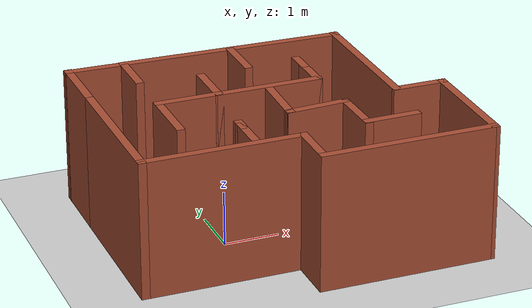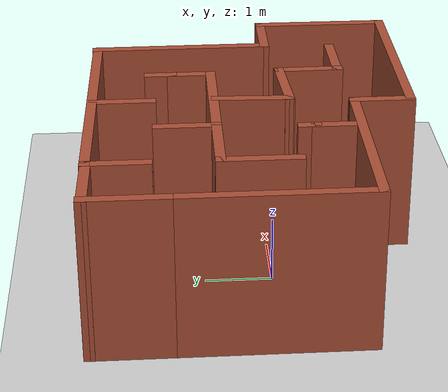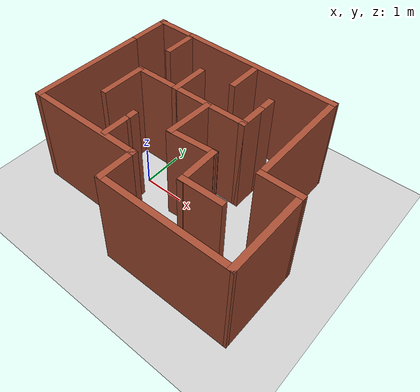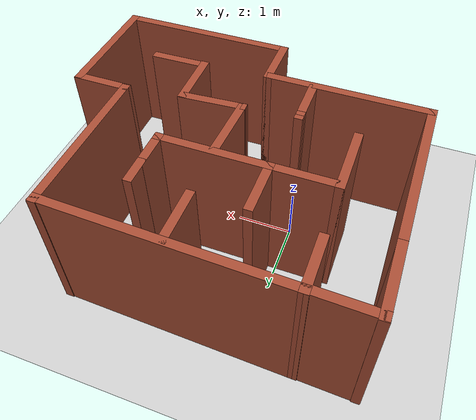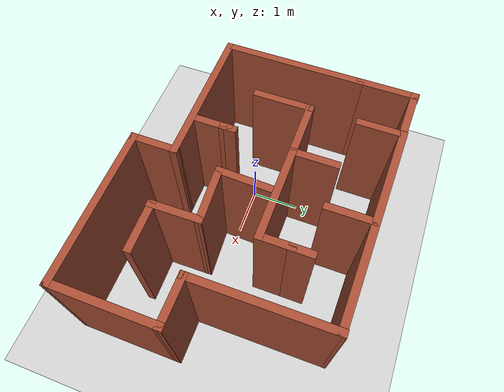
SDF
<?xml version='1.0'?>
<sdf version='1.6'>
  <world name="default">
    <include>
      <uri>model://ground_plane</uri>
    </include>

    <!-- Global light source -->
    <include>
      <uri>model://sun</uri>
    </include>

    <!-- Focus camera on tall pendulum -->
    <gui fullscreen='0'>
      <camera name='user_camera'>
        <pose>4.927360 -4.376610 3.740080 0.000000 0.275643 2.356190</pose>
        <view_controller>orbit</view_controller>
      </camera>
    </gui>

  <model name='brick_maze'>
    <pose frame=''>1.07072 0.276366 0 0 -0 0</pose>
    <link name='Wall_1'>
      <collision name='Wall_1_Collision'>
        <geometry>
          <box>
            <size>1.1587 0.15 2.5</size>
          </box>
        </geometry>
        <pose frame=''>0 0 1.25 0 -0 0</pose>
      </collision>
      <visual name='Wall_1_Visual'>
        <pose frame=''>0 0 1.25 0 -0 0</pose>
        <geometry>
          <box>
            <size>1.1587 0.15 2.5</size>
          </box>
        </geometry>
        <material>
          <script>
            <uri>file://media/materials/scripts/gazebo.material</uri>
            <name>Gazebo/Bricks</name>
          </script>
          <ambient>0.921569 0.807843 0.615686 1</ambient>
        </material>
      </visual>
      <pose frame=''>-2.47228 2.39231 0 0 0 -0.026216</pose>
    </link>
    <link name='Wall_10'>
      <collision name='Wall_10_Collision'>
        <geometry>
          <box>
            <size>3 0.15 2.5</size>
          </box>
        </geometry>
        <pose frame=''>0 0 1.25 0 -0 0</pose>
      </collision>
      <visual name='Wall_10_Visual'>
        <pose frame=''>0 0 1.25 0 -0 0</pose>
        <geometry>
          <box>
            <size>3 0.15 2.5</size>
          </box>
        </geometry>
        <material>
          <script>
            <uri>file://media/materials/scripts/gazebo.material</uri>
            <name>Gazebo/Bricks</name>
          </script>
          <ambient>1 1 1 1</ambient>
        </material>
      </visual>
      <pose frame=''>-1.55163 -1.56858 0 0 -0 0</pose>
    </link>
    <link name='Wall_12'>
      <collision name='Wall_12_Collision'>
        <geometry>
          <box>
            <size>0.75 0.15 2.5</size>
          </box>
        </geometry>
        <pose frame=''>0 0 1.25 0 -0 0</pose>
      </collision>
      <visual name='Wall_12_Visual'>
        <pose frame=''>0 0 1.25 0 -0 0</pose>
        <geometry>
          <box>
            <size>0.75 0.15 2.5</size>
          </box>
        </geometry>
        <material>
          <script>
            <uri>file://media/materials/scripts/gazebo.material</uri>
            <name>Gazebo/Bricks</name>
          </script>
          <ambient>1 1 1 1</ambient>
        </material>
      </visual>
      <pose frame=''>-0.953207 -1.20906 0 0 -0 1.5708</pose>
    </link>
    <link name='Wall_13'>
      <collision name='Wall_13_Collision'>
        <geometry>
          <box>
            <size>0.25 0.15 2.5</size>
          </box>
        </geometry>
        <pose frame=''>0 0 1.25 0 -0 0</pose>
      </collision>
      <visual name='Wall_13_Visual'>
        <pose frame=''>0 0 1.25 0 -0 0</pose>
        <geometry>
          <box>
            <size>0.25 0.15 2.5</size>
          </box>
        </geometry>
        <material>
          <script>
            <uri>file://media/materials/scripts/gazebo.material</uri>
            <name>Gazebo/Bricks</name>
          </script>
          <ambient>1 1 1 1</ambient>
        </material>
      </visual>
      <pose frame=''>-0.953207 -0.85906 0 0 -0 1.5708</pose>
    </link>
    <link name='Wall_14'>
      <collision name='Wall_14_Collision'>
        <geometry>
          <box>
            <size>0.25 0.15 2.5</size>
          </box>
        </geometry>
        <pose frame=''>0 0 1.25 0 -0 0</pose>
      </collision>
      <visual name='Wall_14_Visual'>
        <pose frame=''>0 0 1.25 0 -0 0</pose>
        <geometry>
          <box>
            <size>0.25 0.15 2.5</size>
          </box>
        </geometry>
        <material>
          <script>
            <uri>file://media/materials/scripts/gazebo.material</uri>
            <name>Gazebo/Bricks</name>
          </script>
          <ambient>1 1 1 1</ambient>
        </material>
      </visual>
      <pose frame=''>-0.953207 -0.75906 0 0 -0 1.5708</pose>
    </link>
    <link name='Wall_16'>
      <collision name='Wall_16_Collision'>
        <geometry>
          <box>
            <size>1.25 0.15 2.5</size>
          </box>
        </geometry>
        <pose frame=''>0 0 1.25 0 -0 0</pose>
      </collision>
      <visual name='Wall_16_Visual'>
        <pose frame=''>0 0 1.25 0 -0 0</pose>
        <geometry>
          <box>
            <size>1.25 0.15 2.5</size>
          </box>
        </geometry>
        <material>
          <script>
            <uri>file://media/materials/scripts/gazebo.material</uri>
            <name>Gazebo/Bricks</name>
          </script>
          <ambient>1 1 1 1</ambient>
        </material>
      </visual>
      <pose frame=''>-1.95831 -0.020085 0 0 -0 1.5708</pose>
    </link>
    <link name='Wall_17'>
      <collision name='Wall_17_Collision'>
        <geometry>
          <box>
            <size>1.25 0.15 2.5</size>
          </box>
        </geometry>
        <pose frame=''>0 0 1.25 0 -0 0</pose>
      </collision>
      <visual name='Wall_17_Visual'>
        <pose frame=''>0 0 1.25 0 -0 0</pose>
        <geometry>
          <box>
            <size>1.25 0.15 2.5</size>
          </box>
        </geometry>
        <material>
          <script>
            <uri>file://media/materials/scripts/gazebo.material</uri>
            <name>Gazebo/Bricks</name>
          </script>
          <ambient>1 1 1 1</ambient>
        </material>
      </visual>
      <pose frame=''>-1.40831 0.529915 0 0 -0 0</pose>
    </link>
    <link name='Wall_18'>
      <collision name='Wall_18_Collision'>
        <geometry>
          <box>
            <size>1 0.15 2.5</size>
          </box>
        </geometry>
        <pose frame=''>0 0 1.25 0 -0 0</pose>
      </collision>
      <visual name='Wall_18_Visual'>
        <pose frame=''>0 0 1.25 0 -0 0</pose>
        <geometry>
          <box>
            <size>1 0.15 2.5</size>
          </box>
        </geometry>
        <material>
          <script>
            <uri>file://media/materials/scripts/gazebo.material</uri>
            <name>Gazebo/Bricks</name>
          </script>
          <ambient>1 1 1 1</ambient>
        </material>
      </visual>
      <pose frame=''>-0.858307 0.954915 0 0 -0 1.5708</pose>
    </link>
    <link name='Wall_2'>
      <collision name='Wall_2_Collision'>
        <geometry>
          <box>
            <size>1 0.15 2.5</size>
          </box>
        </geometry>
        <pose frame=''>0 0 1.25 0 -0 0</pose>
      </collision>
      <visual name='Wall_2_Visual'>
        <pose frame=''>0 0 1.25 0 -0 0</pose>
        <geometry>
          <box>
            <size>1 0.15 2.5</size>
          </box>
        </geometry>
        <material>
          <script>
            <uri>file://media/materials/scripts/gazebo.material</uri>
            <name>Gazebo/Bricks</name>
          </script>
          <ambient>1 1 1 1</ambient>
        </material>
      </visual>
      <pose frame=''>-1.96793 1.96731 0 0 0 -1.5708</pose>
    </link>
    <link name='Wall_20'>
      <collision name='Wall_20_Collision'>
        <geometry>
          <box>
            <size>2 0.15 2.5</size>
          </box>
        </geometry>
        <pose frame=''>0 0 1.25 0 -0 0</pose>
      </collision>
      <visual name='Wall_20_Visual'>
        <pose frame=''>0 0 1.25 0 -0 0</pose>
        <geometry>
          <box>
            <size>2 0.15 2.5</size>
          </box>
        </geometry>
        <material>
          <script>
            <uri>file://media/materials/scripts/gazebo.material</uri>
            <name>Gazebo/Bricks</name>
          </script>
          <ambient>1 1 1 1</ambient>
        </material>
      </visual>
      <pose frame=''>0.066693 0.529915 0 0 -0 0</pose>
    </link>
    <link name='Wall_21'>
      <collision name='Wall_21_Collision'>
        <geometry>
          <box>
            <size>0.75 0.15 2.5</size>
          </box>
        </geometry>
        <pose frame=''>0 0 1.25 0 -0 0</pose>
      </collision>
      <visual name='Wall_21_Visual'>
        <pose frame=''>0 0 1.25 0 -0 0</pose>
        <geometry>
          <box>
            <size>0.75 0.15 2.5</size>
          </box>
        </geometry>
        <material>
          <script>
            <uri>file://media/materials/scripts/gazebo.material</uri>
            <name>Gazebo/Bricks</name>
          </script>
          <ambient>1 1 1 1</ambient>
        </material>
      </visual>
      <pose frame=''>0.991693 0.829915 0 0 -0 1.5708</pose>
    </link>
    <link name='Wall_23'>
      <collision name='Wall_23_Collision'>
        <geometry>
          <box>
            <size>0.5 0.15 2.5</size>
          </box>
        </geometry>
        <pose frame=''>0 0 1.25 0 -0 0</pose>
      </collision>
      <visual name='Wall_23_Visual'>
        <pose frame=''>0 0 1.25 0 -0 0</pose>
        <geometry>
          <box>
            <size>0.5 0.15 2.5</size>
          </box>
        </geometry>
        <material>
          <script>
            <uri>file://media/materials/scripts/gazebo.material</uri>
            <name>Gazebo/Bricks</name>
          </script>
          <ambient>1 1 1 1</ambient>
        </material>
      </visual>
      <pose frame=''>0.991693 1.30492 0 0 -0 1.5708</pose>
    </link>
    <link name='Wall_26'>
      <collision name='Wall_26_Collision'>
        <geometry>
          <box>
            <size>1.28735 0.15 2.5</size>
          </box>
        </geometry>
        <pose frame=''>0 0 1.25 0 -0 0</pose>
      </collision>
      <visual name='Wall_26_Visual'>
        <pose frame=''>0 0 1.25 0 -0 0</pose>
        <geometry>
          <box>
            <size>1.28735 0.15 2.5</size>
          </box>
        </geometry>
        <material>
          <script>
            <uri>file://media/materials/scripts/gazebo.material</uri>
            <name>Gazebo/Bricks</name>
          </script>
          <ambient>1 1 1 1</ambient>
        </material>
      </visual>
      <pose frame=''>-2.97663 1.85009 0 0 0 -1.5708</pose>
    </link>
    <link name='Wall_28'>
      <collision name='Wall_28_Collision'>
        <geometry>
          <box>
            <size>1.2375 0.15 2.5</size>
          </box>
        </geometry>
        <pose frame=''>0 0 1.25 0 -0 0</pose>
      </collision>
      <visual name='Wall_28_Visual'>
        <pose frame=''>0 0 1.25 0 -0 0</pose>
        <geometry>
          <box>
            <size>1.2375 0.15 2.5</size>
          </box>
        </geometry>
        <material>
          <script>
            <uri>file://media/materials/scripts/gazebo.material</uri>
            <name>Gazebo/Bricks</name>
          </script>
          <ambient>1 1 1 1</ambient>
        </material>
      </visual>
      <pose frame=''>0.032055 -0.055472 0 0 0 -1.60729</pose>
    </link>
    <link name='Wall_29'>
      <collision name='Wall_29_Collision'>
        <geometry>
          <box>
            <size>1.19843 0.15 2.5</size>
          </box>
        </geometry>
        <pose frame=''>0 0 1.25 0 -0 0</pose>
      </collision>
      <visual name='Wall_29_Visual'>
        <pose frame=''>0 0 1.25 0 -0 0</pose>
        <geometry>
          <box>
            <size>1.19843 0.15 2.5</size>
          </box>
        </geometry>
        <material>
          <script>
            <uri>file://media/materials/scripts/gazebo.material</uri>
            <name>Gazebo/Bricks</name>
          </script>
          <ambient>1 1 1 1</ambient>
        </material>
      </visual>
      <pose frame=''>0.535768 -0.579022 0 0 -0 0.063067</pose>
    </link>
    <link name='Wall_30'>
      <collision name='Wall_30_Collision'>
        <geometry>
          <box>
            <size>1.06622 0.15 2.5</size>
          </box>
        </geometry>
        <pose frame=''>0 0 1.25 0 -0 0</pose>
      </collision>
      <visual name='Wall_30_Visual'>
        <pose frame=''>0 0 1.25 0 -0 0</pose>
        <geometry>
          <box>
            <size>1.06622 0.15 2.5</size>
          </box>
        </geometry>
        <material>
          <script>
            <uri>file://media/materials/scripts/gazebo.material</uri>
            <name>Gazebo/Bricks</name>
          </script>
          <ambient>1 1 1 1</ambient>
        </material>
      </visual>
      <pose frame=''>1.06593 -1.01725 0 0 0 -1.55636</pose>
    </link>
    <link name='Wall_31'>
      <collision name='Wall_31_Collision'>
        <geometry>
          <box>
            <size>1.05329 0.15 2.5</size>
          </box>
        </geometry>
        <pose frame=''>0 0 1.25 0 -0 0</pose>
      </collision>
      <visual name='Wall_31_Visual'>
        <pose frame=''>0 0 1.25 0 -0 0</pose>
        <geometry>
          <box>
            <size>1.05329 0.15 2.5</size>
          </box>
        </geometry>
        <material>
          <script>
            <uri>file://media/materials/scripts/gazebo.material</uri>
            <name>Gazebo/Bricks</name>
          </script>
          <ambient>1 1 1 1</ambient>
        </material>
      </visual>
      <pose frame=''>1.52399 -1.45547 0 0 -0 0.014646</pose>
    </link>
    <link name='Wall_33'>
      <collision name='Wall_33_Collision'>
        <geometry>
          <box>
            <size>1 0.15 2.5</size>
          </box>
        </geometry>
        <pose frame=''>0 0 1.25 0 -0 0</pose>
      </collision>
      <visual name='Wall_33_Visual'>
        <pose frame=''>0 0 1.25 0 -0 0</pose>
        <geometry>
          <box>
            <size>1 0.15 2.5</size>
          </box>
        </geometry>
        <material>
          <script>
            <uri>file://media/materials/scripts/gazebo.material</uri>
            <name>Gazebo/Bricks</name>
          </script>
          <ambient>1 1 1 1</ambient>
        </material>
      </visual>
      <pose frame=''>-0.126632 -1.99358 0 0 0 -1.5708</pose>
    </link>
    <link name='Wall_34'>
      <collision name='Wall_34_Collision'>
        <geometry>
          <box>
            <size>3.25 0.15 2.5</size>
          </box>
        </geometry>
        <pose frame=''>0 0 1.25 0 -0 0</pose>
      </collision>
      <visual name='Wall_34_Visual'>
        <pose frame=''>0 0 1.25 0 -0 0</pose>
        <geometry>
          <box>
            <size>3.25 0.15 2.5</size>
          </box>
        </geometry>
        <material>
          <script>
            <uri>file://media/materials/scripts/gazebo.material</uri>
            <name>Gazebo/Bricks</name>
          </script>
          <ambient>1 1 1 1</ambient>
        </material>
      </visual>
      <pose frame=''>1.42337 -2.41859 0 0 -0 0</pose>
    </link>
    <link name='Wall_37'>
      <collision name='Wall_37_Collision'>
        <geometry>
          <box>
            <size>1.03967 0.15 2.5</size>
          </box>
        </geometry>
        <pose frame=''>0 0 1.25 0 -0 0</pose>
      </collision>
      <visual name='Wall_37_Visual'>
        <pose frame=''>0 0 1.25 0 -0 0</pose>
        <geometry>
          <box>
            <size>1.03967 0.15 2.5</size>
          </box>
        </geometry>
        <material>
          <script>
            <uri>file://media/materials/scripts/gazebo.material</uri>
            <name>Gazebo/Bricks</name>
          </script>
          <ambient>1 1 1 1</ambient>
        </material>
      </visual>
      <pose frame=''>2.53338 -0.39816 0 0 -0 0</pose>
    </link>
    <link name='Wall_39'>
      <collision name='Wall_39_Collision'>
        <geometry>
          <box>
            <size>2.84133 0.15 2.5</size>
          </box>
        </geometry>
        <pose frame=''>0 0 1.25 0 -0 0</pose>
      </collision>
      <visual name='Wall_39_Visual'>
        <pose frame=''>0 0 1.25 0 -0 0</pose>
        <geometry>
          <box>
            <size>2.84133 0.15 2.5</size>
          </box>
        </geometry>
        <material>
          <script>
            <uri>file://media/materials/scripts/gazebo.material</uri>
            <name>Gazebo/Bricks</name>
          </script>
          <ambient>1 1 1 1</ambient>
        </material>
      </visual>
      <pose frame=''>2.08193 0.960715 0 0 0 -1.56588</pose>
    </link>
    <link name='Wall_41'>
      <collision name='Wall_41_Collision'>
        <geometry>
          <box>
            <size>2.15721 0.15 2.5</size>
          </box>
        </geometry>
        <pose frame=''>0 0 1.25 0 -0 0</pose>
      </collision>
      <visual name='Wall_41_Visual'>
        <pose frame=''>0 0 1.25 0 -0 0</pose>
        <geometry>
          <box>
            <size>2.15721 0.15 2.5</size>
          </box>
        </geometry>
        <material>
          <script>
            <uri>file://media/materials/scripts/gazebo.material</uri>
            <name>Gazebo/Bricks</name>
          </script>
          <ambient>1 1 1 1</ambient>
        </material>
      </visual>
      <pose frame=''>2.97579 -1.41498 0 0 -0 1.56838</pose>
    </link>
    <link name='Wall_43'>
      <collision name='Wall_43_Collision'>
        <geometry>
          <box>
            <size>4.19369 0.15 2.5</size>
          </box>
        </geometry>
        <pose frame=''>0 0 1.25 0 -0 0</pose>
      </collision>
      <visual name='Wall_43_Visual'>
        <pose frame=''>0 0 1.25 0 -0 0</pose>
        <geometry>
          <box>
            <size>4.19369 0.15 2.5</size>
          </box>
        </geometry>
        <material>
          <script>
            <uri>file://media/materials/scripts/gazebo.material</uri>
            <name>Gazebo/Bricks</name>
          </script>
          <ambient>1 1 1 1</ambient>
        </material>
      </visual>
      <pose frame=''>0.053693 2.34273 0 0 0 -0.024524</pose>
    </link>
    <link name='Wall_7'>
      <collision name='Wall_7_Collision'>
        <geometry>
          <box>
            <size>1 0.15 2.5</size>
          </box>
        </geometry>
        <pose frame=''>0 0 1.25 0 -0 0</pose>
      </collision>
      <visual name='Wall_7_Visual'>
        <pose frame=''>0 0 1.25 0 -0 0</pose>
        <geometry>
          <box>
            <size>1 0.15 2.5</size>
          </box>
        </geometry>
        <material>
          <script>
            <uri>file://media/materials/scripts/gazebo.material</uri>
            <name>Gazebo/Bricks</name>
          </script>
          <ambient>1 1 1 1</ambient>
        </material>
      </visual>
      <pose frame=''>0.038668 1.88796 0 0 0 -1.5708</pose>
    </link>
    <link name='Wall_9'>
      <collision name='Wall_9_Collision'>
        <geometry>
          <box>
            <size>3 0.15 2.5</size>
          </box>
        </geometry>
        <pose frame=''>0 0 1.25 0 -0 0</pose>
      </collision>
      <visual name='Wall_9_Visual'>
        <pose frame=''>0 0 1.25 0 -0 0</pose>
        <geometry>
          <box>
            <size>3 0.15 2.5</size>
          </box>
        </geometry>
        <material>
          <script>
            <uri>file://media/materials/scripts/gazebo.material</uri>
            <name>Gazebo/Bricks</name>
          </script>
          <ambient>1 1 1 1</ambient>
        </material>
      </visual>
      <pose frame=''>-2.97663 -0.143585 0 0 0 -1.5708</pose>
    </link>
    <static>1</static>
  </model>
  </world>
</sdf>
